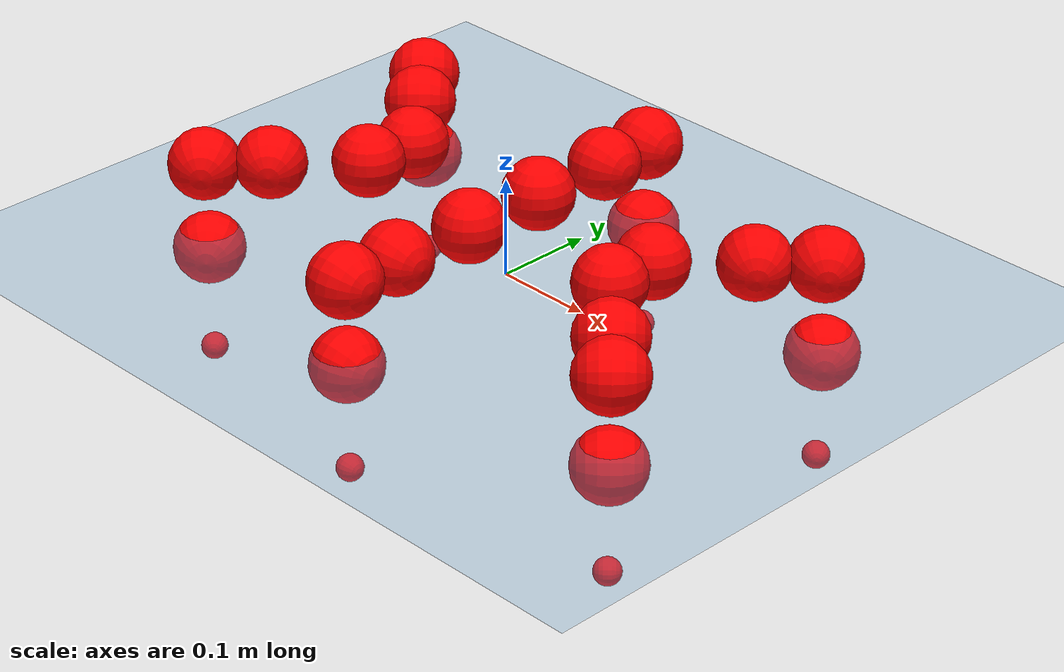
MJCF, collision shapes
<mujoco model="Golem">
  <compiler angle="radian" assetdir="assets" balanceinertia="true" inertiafromgeom="false"/>

  <option timestep="0.005" density="1.2" viscosity="2e-05"/>

  <size nkey="1"/>

  <visual>
    <quality shadowsize="8192"/>
    <map shadowclip="0.5"/>
  </visual>

  <default>
    <default class="/">
      <joint armature="0.01" damping="0.01" frictionloss="0.01"/>
      <geom contype="0" conaffinity="0" group="1" solref="-1000 -80"/>
      <site size="0.01 0.005 0.005" group="5"/>
      <general forcelimited="true" biastype="affine" gainprm="25" biasprm="0 -25 -0.5"/>
      <default class="visual">
        <geom type="mesh" group="2"/>
      </default>
      <default class="collision">
        <geom group="3"/>
      </default>
      <default class="foot">
        <geom size="0.01 0 0" condim="6" group="4" priority="1" solimp="0.015 1 0.01"/>
      </default>
      <default class="reward_collision_sphere">
        <geom group="5" rgba="1 0 0 1"/>
      </default>
    </default>
  </default>

  <asset>
    <texture type="skybox" colorspace="auto" name="//unnamed_texture_0" builtin="gradient" rgb1="0.95 0.95 0.95" rgb2="0.95 0.95 0.95" width="100" height="600"/>
    <texture type="2d" colorspace="auto" name="texplane" builtin="checker" rgb1="0.345 0.575 0.748" rgb2="0.345 0.575 0.748" markrgb="1 1 1" width="512" height="512"/>
    <material name="MatPlane" class="/" texture="texplane" texuniform="true" texrepeat="2 2" specular="0.9"/>
    <mesh name="body" class="/" file="body.stl" scale="0.001 0.001 0.001"/>
    <mesh name="coxa" class="/" file="coxa.stl" scale="0.001 0.001 0.001"/>
    <mesh name="femur" class="/" file="femur.stl" scale="0.001 0.001 0.001"/>
    <mesh name="tibia" class="/" file="tibia.stl" scale="0.001 0.001 0.001"/>
    <mesh name="tarsus" class="/" file="tarsus.stl" scale="0.001 0.001 0.001"/>
  </asset>

  <worldbody>
    <geom name="floor" class="/" size="100 100 0.125" type="plane" group="0" material="MatPlane"/>
    <light name="toplight_shadow" class="/" pos="0 0 5" dir="0.0990148 0.0990148 -0.990148" type="directional" ambient="0.04 0.04 0.04" diffuse="0.55 0.55 0.55" specular="0.12 0.12 0.12"/>
    <light name="toplight_fill" class="/" pos="0 0 5" dir="0.0990148 0.0990148 -0.990148" type="directional" castshadow="false" ambient="0.04 0.04 0.04" diffuse="0.3 0.3 0.3" specular="0.08 0.08 0.08"/>
    <body name="trunk" pos="2.77443e-05 -0.00034112 0.000883031" quat="1 9.08787e-05 2.16678e-05 -0.00028012">
      <inertial pos="-1.12918e-05 -0.000147579 -0.00336135" quat="1 -6.12924e-05 0.000725914 8.67989e-05" mass="2.66022" diaginertia="0.0118226 0.000669269 0.0137576"/>
      <joint name="//unnamed_joint_0" type="free"/>
      <geom name="//unnamed_geom_1" class="/" pos="0 0 0.0682144" quat="1 0 0 0" type="mesh" rgba="0.9 0.9 0.9 1" mesh="body"/>
      <site name="imu" class="/" pos="0.132268 -0.00243893 0.109181" size="0.00893261"/>
      <camera name="track" class="/" pos="0 -1.16086 0" quat="0.707107 0.707107 0 0" mode="trackcom"/>
      <camera name="ego_camera" class="/" pos="0.134356 0 0.106585" quat="-0.5 -0.5 0.5 0.5"/>
      <body name="coxa_RR" pos="-0.182441 -0.0495827 0.0696144" quat="0.382762 -8.10873e-05 -0.000299698 -0.923847">
        <inertial pos="-0.000704454 0.000142083 0.00178115" quat="0.999998 -0.00194699 -0.00047535 -0.000415834" mass="0.141252" diaginertia="0.0116856 0.000654428 0.0138288"/>
        <joint name="coxa_joint_RR" class="/" pos="0 0 0" axis="-0.000947033 0.000378731 -0.999999" stiffness="0.00026096" range="-3.14524 3.13388" armature="0.00908721" damping="0.00838189" frictionloss="0.00888653"/>
        <geom name="//unnamed_geom_2" class="/" type="mesh" rgba="0.2 0.2 0.2 1" mesh="coxa"/>
        <geom name="//unnamed_geom_3" class="reward_collision_sphere" size="0.0357305" pos="-0.0310051 0 0"/>
        <body name="femur_RR" pos="0.0622905 0.00207488 -0.00148218" quat="0.499934 -0.500225 0.499944 0.499897">
          <inertial pos="0.000116147 0.000181224 -0.000756846" quat="0.99999 -9.24246e-05 0.00430067 -0.000990279" mass="0.142485" diaginertia="0.0117037 0.000665454 0.0138051"/>
          <joint name="femur_joint_RR" class="/" pos="0 0 0" axis="0.000249464 -0.00122638 -0.999999" stiffness="0.000224663" range="-3.13585 3.13548" armature="0.00870054" damping="0.000100461" frictionloss="0.00896397"/>
          <geom name="//unnamed_geom_4" class="/" type="mesh" rgba="0.9 0.9 0.9 1" mesh="femur"/>
          <geom name="//unnamed_geom_5" class="reward_collision_sphere" size="0.0357305"/>
          <body name="tibia_RR" pos="0.000941471 -0.0634389 0.00190717" quat="-7.82081e-06 1 2.41014e-06 -4.30231e-05">
            <inertial pos="-0.000164605 0.000303563 0.000283074" quat="1 -1.19356e-05 6.5973e-05 0.000201372" mass="0.144075" diaginertia="0.0119456 0.000663914 0.0139411"/>
            <joint name="tibia_joint_RR" class="/" pos="0 0 0" axis="-0.000605708 0.000423573 1" range="-3.13736 3.14672" armature="0.00932684" damping="0" frictionloss="0.00926655"/>
            <geom name="//unnamed_geom_6" class="/" type="mesh" rgba="0.2 0.2 0.2 1" mesh="tibia"/>
            <geom name="//unnamed_geom_7" class="reward_collision_sphere" size="0.0357305"/>
            <body name="tarsus_RR" pos="0.090433 -0.000972418 -0.00136096" quat="1 -3.17593e-05 1.22749e-05 0.0003192">
              <inertial pos="0.0609036 0.00027098 -0.000956041" quat="0.499461 0.501694 0.501256 0.497579" mass="0.142859" diaginertia="0.0118792 0.000657763 0.0139198"/>
              <joint name="tarsus_joint_RR" class="/" pos="0 0 0" axis="0.00214029 0.00207832 0.999996" range="-3.12287 3.1428" armature="0.00882309" damping="0.00411294" frictionloss="0.00896707"/>
              <geom name="//unnamed_geom_8" class="/" type="mesh" rgba="0.9 0.9 0.9 1" mesh="tarsus"/>
              <geom name="foot_1" class="foot" size="0.0089418" pos="0.115753 0 0" quat="0 -0.707107 0 0.707107"/>
              <geom name="//unnamed_geom_10" class="reward_collision_sphere" size="0.0357305"/>
              <geom name="//unnamed_geom_11" class="reward_collision_sphere" size="0.0133989" pos="0.111102 0 0"/>
              <site name="foot_1" class="foot" pos="0.115753 0 0" quat="0 -0.707107 0 0.707107" size="0.00893261"/>
            </body>
          </body>
        </body>
      </body>
      <body name="coxa_RM" pos="-0.000274276 -0.0775916 0.0689682" quat="0.707099 0.000272874 -0.000147854 -0.707114">
        <inertial pos="0.00011931 0.000199835 0.000737969" quat="0.999997 -0.000920531 -0.0018676 0.00139813" mass="0.144732" diaginertia="0.0118298 0.000664584 0.0137272"/>
        <joint name="coxa_joint_RM" class="/" pos="0 0 0" axis="0.00150942 -0.000915038 -0.999998" range="-3.13796 3.15327" armature="0.00875992" damping="0.00891791" frictionloss="0.00853983"/>
        <geom name="//unnamed_geom_12" class="/" type="mesh" rgba="0.2 0.2 0.2 1" mesh="coxa"/>
        <geom name="//unnamed_geom_13" class="reward_collision_sphere" size="0.0357305" pos="-0.0310051 0 0"/>
        <body name="femur_RM" pos="0.0592329 -0.000680707 0.0011258" quat="0.499967 -0.499988 0.500055 0.499991">
          <inertial pos="0.000199094 -0.00109221 0.000185299" quat="0.999999 -0.00163644 -6.59053e-06 6.37983e-05" mass="0.14091" diaginertia="0.0118287 0.000657369 0.0138408"/>
          <joint name="femur_joint_RM" class="/" pos="0 0 0" axis="0.000816244 -0.000791703 -0.999999" range="-3.15087 3.12564" armature="0.00854411" damping="0.00535039" frictionloss="0.00883816"/>
          <geom name="//unnamed_geom_14" class="/" type="mesh" rgba="0.9 0.9 0.9 1" mesh="femur"/>
          <geom name="//unnamed_geom_15" class="reward_collision_sphere" size="0.0357305"/>
          <body name="tibia_RM" pos="-0.000639976 -0.0611636 -0.000660127" quat="1.66249e-05 1 -4.17566e-05 -8.65413e-05">
            <inertial pos="-0.000270168 -0.000626751 -0.000632715" quat="0.999997 0.00192193 -0.00119636 -0.000491802" mass="0.142595" diaginertia="0.0117954 0.000658972 0.0138713"/>
            <joint name="tibia_joint_RM" class="/" pos="0 0 0" axis="-3.72684e-05 -6.62839e-05 1" range="-3.14547 3.12128" armature="0.00886187" damping="0.00434262" frictionloss="0.00894897"/>
            <geom name="//unnamed_geom_16" class="/" type="mesh" rgba="0.2 0.2 0.2 1" mesh="tibia"/>
            <geom name="//unnamed_geom_17" class="reward_collision_sphere" size="0.0357305"/>
            <body name="tarsus_RM" pos="0.0885511 -0.000374539 0.00123307" quat="1 9.4028e-05 -0.000345541 -0.000240163">
              <inertial pos="0.0623519 0.000536166 0.000423744" quat="0.50027 0.499548 0.499627 0.500554" mass="0.14126" diaginertia="0.0118342 0.000659002 0.013766"/>
              <joint name="tarsus_joint_RM" class="/" pos="0 0 0" axis="2.59527e-05 -1.41921e-05 1" range="-3.14106 3.12872" armature="0.00916468" damping="0.00263345" frictionloss="0.0091483"/>
              <geom name="//unnamed_geom_18" class="/" type="mesh" rgba="0.9 0.9 0.9 1" mesh="tarsus"/>
              <geom name="foot_2" class="foot" size="0.00932518" pos="0.115753 0 0" quat="0 -0.707107 0 0.707107"/>
              <geom name="//unnamed_geom_20" class="reward_collision_sphere" size="0.0357305"/>
              <geom name="//unnamed_geom_21" class="reward_collision_sphere" size="0.0133989" pos="0.111102 0 0"/>
              <site name="foot_2" class="foot" pos="0.115753 0 0" quat="0 -0.707107 0 0.707107" size="0.00893261"/>
            </body>
          </body>
        </body>
      </body>
      <body name="coxa_RF" pos="0.183561 -0.0491609 0.0676693" quat="0.923856 -0.000109903 2.83382e-05 -0.38274">
        <inertial pos="3.11564e-05 -0.000658504 0.000796427" quat="0.99999 0.0021743 0.00351817 -0.00152142" mass="0.143339" diaginertia="0.0119305 0.000666368 0.0138602"/>
        <joint name="coxa_joint_RF" class="/" pos="0 0 0" axis="0.000792399 0.000606663 -1" range="-3.14393 3.15598" armature="0.00877312" damping="0.00681191" frictionloss="0.00886445"/>
        <geom name="//unnamed_geom_22" class="/" type="mesh" rgba="0.2 0.2 0.2 1" mesh="coxa"/>
        <geom name="//unnamed_geom_23" class="reward_collision_sphere" size="0.0357305" pos="-0.0310051 0 0"/>
        <body name="femur_RF" pos="0.0613714 0.000328426 -0.0013475" quat="0.499901 -0.499868 0.500193 0.500039">
          <inertial pos="0.000257772 -1.92832e-05 -0.000383615" quat="0.999992 -0.00170374 -0.00349322 -0.000466378" mass="0.142737" diaginertia="0.0119478 0.000665976 0.0139062"/>
          <joint name="femur_joint_RF" class="/" pos="0 0 0" axis="0.000339338 -0.000479881 -1" range="-3.14935 3.13588" armature="0.00884914" damping="0.00415675" frictionloss="0.00893719"/>
          <geom name="//unnamed_geom_24" class="/" type="mesh" rgba="0.9 0.9 0.9 1" mesh="femur"/>
          <geom name="//unnamed_geom_25" class="reward_collision_sphere" size="0.0357305"/>
          <body name="tibia_RF" pos="0.000575464 -0.0640409 -0.000580095" quat="-0.00018444 1 0.000128487 2.05795e-05">
            <inertial pos="0.000302732 0.000289412 0.000521474" quat="0.999999 -0.000242028 0.00100439 0.000148475" mass="0.140546" diaginertia="0.0116945 0.000649109 0.0136987"/>
            <joint name="tibia_joint_RF" class="/" pos="0 0 0" axis="-0.00177394 0.000611832 0.999998" range="-3.126 3.13444" armature="0.00883265" damping="0" frictionloss="0.00931875"/>
            <geom name="//unnamed_geom_26" class="/" type="mesh" rgba="0.2 0.2 0.2 1" mesh="tibia"/>
            <geom name="//unnamed_geom_27" class="reward_collision_sphere" size="0.0357305"/>
            <body name="tarsus_RF" pos="0.0905633 0.000598062 0.000167344" quat="1 -3.91133e-05 -1.23373e-06 3.94623e-05">
              <inertial pos="0.0620187 0.000563115 0.000121768" quat="0.500148 0.50001 0.499942 0.499899" mass="0.143047" diaginertia="0.0119564 0.000667616 0.0138988"/>
              <joint name="tarsus_joint_RF" class="/" pos="0 0 0" axis="-0.00559586 0.000513417 0.999984" range="-3.14307 3.12757" armature="0.00875146" damping="0" frictionloss="0.00856539"/>
              <geom name="//unnamed_geom_28" class="/" type="mesh" rgba="0.9 0.9 0.9 1" mesh="tarsus"/>
              <geom name="foot_3" class="foot" size="0.00885929" pos="0.115753 0 0" quat="0 -0.707107 0 0.707107"/>
              <geom name="//unnamed_geom_30" class="reward_collision_sphere" size="0.0357305"/>
              <geom name="//unnamed_geom_31" class="reward_collision_sphere" size="0.0133989" pos="0.111102 0 0"/>
              <site name="foot_3" class="foot" pos="0.115753 0 0" quat="0 -0.707107 0 0.707107" size="0.00893261"/>
            </body>
          </body>
        </body>
      </body>
      <body name="coxa_LR" pos="-0.18325 0.0520348 0.0684951" quat="0.38265 -3.05032e-05 -0.000109234 0.923893">
        <inertial pos="0.000938514 -0.000790317 0.000997945" quat="0.999997 -0.000373594 0.00100803 0.00211225" mass="0.143858" diaginertia="0.0118269 0.000669609 0.0138228"/>
        <joint name="coxa_joint_LR" class="/" pos="0 0 0" axis="0.000171293 0.000450945 -1" range="-3.1285 3.13614" armature="0.00897044" damping="0.00494924" frictionloss="0.00856851"/>
        <geom name="//unnamed_geom_32" class="/" type="mesh" rgba="0.2 0.2 0.2 1" mesh="coxa"/>
        <geom name="//unnamed_geom_33" class="reward_collision_sphere" size="0.0357305" pos="-0.0310051 0 0"/>
        <body name="femur_LR" pos="0.0626432 -0.00350873 -0.00149541" quat="0.499909 -0.500054 0.499937 0.500101">
          <inertial pos="-0.000221748 -0.00106051 -0.000146274" quat="1 0.00026993 0.000834581 0.000361465" mass="0.142669" diaginertia="0.0116133 0.000653134 0.0138254"/>
          <joint name="femur_joint_LR" class="/" pos="0 0 0" axis="0.00571224 -9.72317e-05 0.999984" range="-3.12705 3.13512" armature="0.00922852" damping="0.00494718" frictionloss="0.00899076"/>
          <geom name="//unnamed_geom_34" class="/" type="mesh" rgba="0.9 0.9 0.9 1" mesh="femur"/>
          <geom name="//unnamed_geom_35" class="reward_collision_sphere" size="0.0357305"/>
          <body name="tibia_LR" pos="0.000423099 -0.0637142 -0.00149331" quat="2.71916e-05 1 -4.0916e-05 -1.88118e-05">
            <inertial pos="0.000569313 0.000413518 -0.000504315" quat="0.999991 0.00357333 0.00216718 0.00079655" mass="0.143075" diaginertia="0.0119317 0.000658359 0.0138954"/>
            <joint name="tibia_joint_LR" class="/" pos="0 0 0" axis="0.00102818 -0.00308441 -0.999995" stiffness="7.70738e-05" range="-3.13536 3.12306" armature="0.00922382" damping="0.00448238" frictionloss="0.00893494"/>
            <geom name="//unnamed_geom_36" class="/" type="mesh" rgba="0.2 0.2 0.2 1" mesh="tibia"/>
            <geom name="//unnamed_geom_37" class="reward_collision_sphere" size="0.0357305"/>
            <body name="tarsus_LR" pos="0.0913723 0.000507003 0.00153537" quat="1 1.36394e-05 -1.90217e-05 1.89432e-05">
              <inertial pos="0.0624991 0.000832197 0.000547287" quat="0.499844 0.499977 0.500041 0.500139" mass="0.142502" diaginertia="0.0117749 0.000664057 0.01361"/>
              <joint name="tarsus_joint_LR" class="/" pos="0 0 0" axis="-0.000114018 8.37074e-05 -1" range="-3.14694 3.1204" armature="0.00889252" damping="0" frictionloss="0.00931726"/>
              <geom name="//unnamed_geom_38" class="/" type="mesh" rgba="0.9 0.9 0.9 1" mesh="tarsus"/>
              <geom name="foot_4" class="foot" size="0.00851916" pos="0.115753 0 0" quat="0.707107 0 -0.707107 0"/>
              <geom name="//unnamed_geom_40" class="reward_collision_sphere" size="0.0357305"/>
              <geom name="//unnamed_geom_41" class="reward_collision_sphere" size="0.0133989" pos="0.111102 0 0"/>
              <site name="foot_4" class="foot" pos="0.115753 0 0" quat="0.707107 0 -0.707107 0" size="0.00893261"/>
            </body>
          </body>
        </body>
      </body>
      <body name="coxa_LM" pos="-0.00203724 0.0752187 0.0683747" quat="0.707084 1.4404e-05 -3.22123e-05 0.70713">
        <inertial pos="4.01687e-05 0.000140612 0.00069049" quat="0.999998 -8.44422e-05 0.00113745 -0.00180741" mass="0.143663" diaginertia="0.0117625 0.000660371 0.0138364"/>
        <joint name="coxa_joint_LM" class="/" pos="0 0 0" axis="0.00263479 -0.00500523 -0.999984" range="-3.14704 3.14123" armature="0.0089699" damping="0.00725866" frictionloss="0.00891757"/>
        <geom name="//unnamed_geom_42" class="/" type="mesh" rgba="0.2 0.2 0.2 1" mesh="coxa"/>
        <geom name="//unnamed_geom_43" class="reward_collision_sphere" size="0.0357305" pos="-0.0310051 0 0"/>
        <body name="femur_LM" pos="0.0582317 0.000780795 -0.00122793" quat="0.500171 -0.500105 0.499988 0.499736">
          <inertial pos="0.000683381 9.50301e-05 -0.000619511" quat="0.999993 -0.000335907 -0.00162021 -0.00341388" mass="0.144224" diaginertia="0.0118649 0.000664025 0.0138359"/>
          <joint name="femur_joint_LM" class="/" pos="0 0 0" axis="-0.000805167 -0.00689552 0.999976" range="-3.13049 3.12999" armature="0.00929796" damping="0.00439164" frictionloss="0.00914683"/>
          <geom name="//unnamed_geom_44" class="/" type="mesh" rgba="0.9 0.9 0.9 1" mesh="femur"/>
          <geom name="//unnamed_geom_45" class="reward_collision_sphere" size="0.0357305"/>
          <body name="tibia_LM" pos="-0.000246358 -0.0594752 0.00152611" quat="-0.000224797 1 2.68248e-05 0.000304454">
            <inertial pos="-0.000620296 -0.00145347 -8.30139e-05" quat="0.999998 0.00129419 -0.000976581 0.000863659" mass="0.139766" diaginertia="0.0116901 0.000653336 0.0136498"/>
            <joint name="tibia_joint_LM" class="/" pos="0 0 0" axis="0.00113953 0.000878581 -0.999999" range="-3.15084 3.154" armature="0.00933959" damping="0" frictionloss="0.00866814"/>
            <geom name="//unnamed_geom_46" class="/" type="mesh" rgba="0.2 0.2 0.2 1" mesh="tibia"/>
            <geom name="//unnamed_geom_47" class="reward_collision_sphere" size="0.0357305"/>
            <body name="tarsus_LM" pos="0.0909086 -0.000467344 -0.00102597" quat="1 5.7672e-05 -9.00491e-05 0.000100014">
              <inertial pos="0.0634133 0.000104783 2.24175e-05" quat="0.497101 0.499924 0.501735 0.501227" mass="0.140982" diaginertia="0.0116238 0.000645794 0.0136364"/>
              <joint name="tarsus_joint_LM" class="/" pos="0 0 0" axis="-0.00082104 0.000615177 -0.999999" range="-3.13898 3.13689" armature="0.00876977" damping="0.00184314" frictionloss="0.00912634"/>
              <geom name="//unnamed_geom_48" class="/" type="mesh" rgba="0.9 0.9 0.9 1" mesh="tarsus"/>
              <geom name="foot_5" class="foot" size="0.00871703" pos="0.115753 0 0" quat="0.707107 0 -0.707107 0"/>
              <geom name="//unnamed_geom_50" class="reward_collision_sphere" size="0.0357305"/>
              <geom name="//unnamed_geom_51" class="reward_collision_sphere" size="0.0133989" pos="0.111102 0 0"/>
              <site name="foot_5" class="foot" pos="0.115753 0 0" quat="0.707107 0 -0.707107 0" size="0.00893261"/>
            </body>
          </body>
        </body>
      </body>
      <body name="coxa_LF" pos="0.184244 0.0488915 0.0685595" quat="0.923923 9.09047e-05 0.000368895 0.382578">
        <inertial pos="0.000112778 -0.00054906 0.000834849" quat="0.999999 0.000351535 0.000339821 0.00128179" mass="0.143401" diaginertia="0.0118798 0.000659013 0.0137426"/>
        <joint name="coxa_joint_LF" class="/" pos="0 0 0" axis="-0.00245261 -0.0018972 -0.999995" range="-3.1222 3.14063" armature="0.00880306" damping="0.00263104" frictionloss="0.0092625"/>
        <geom name="//unnamed_geom_52" class="/" type="mesh" rgba="0.2 0.2 0.2 1" mesh="coxa"/>
        <geom name="//unnamed_geom_53" class="reward_collision_sphere" size="0.0357305" pos="-0.0310051 0 0"/>
        <body name="femur_LF" pos="0.0618079 0.000254527 -0.000608304" quat="0.500084 -0.500186 0.499827 0.499903">
          <inertial pos="3.65543e-05 0.000836868 0.000286691" quat="1 0.000169833 -0.000379639 9.30265e-05" mass="0.143445" diaginertia="0.0117979 0.000661732 0.0138144"/>
          <joint name="femur_joint_LF" class="/" pos="0 0 0" axis="0.000313103 0.00107943 0.999999" range="-3.12712 3.1256" armature="0.00913278" damping="0.000716437" frictionloss="0.00887254"/>
          <geom name="//unnamed_geom_54" class="/" type="mesh" rgba="0.9 0.9 0.9 1" mesh="femur"/>
          <geom name="//unnamed_geom_55" class="reward_collision_sphere" size="0.0357305"/>
          <body name="tibia_LF" pos="0.00055669 -0.0632283 -0.000543169" quat="-0.000183265 1 0.000465758 -0.000188706">
            <inertial pos="-0.000883629 -2.12392e-05 0.000700991" quat="0.999999 0.000978652 0.000834207 -0.000757776" mass="0.140174" diaginertia="0.0118501 0.00065587 0.0138246"/>
            <joint name="tibia_joint_LF" class="/" pos="0 0 0" axis="-0.000701992 0.00631534 -0.99998" range="-3.14539 3.15192" armature="0.00906236" damping="0" frictionloss="0.00909329"/>
            <geom name="//unnamed_geom_56" class="/" type="mesh" rgba="0.2 0.2 0.2 1" mesh="tibia"/>
            <geom name="//unnamed_geom_57" class="reward_collision_sphere" size="0.0357305"/>
            <body name="tarsus_LF" pos="0.0926549 0.00148633 0.000481252" quat="1 5.5032e-06 4.65216e-05 5.78723e-05">
              <inertial pos="0.0630089 0.000634544 -0.000241241" quat="0.498712 0.502969 0.497675 0.500628" mass="0.143162" diaginertia="0.0117503 0.000658863 0.0137746"/>
              <joint name="tarsus_joint_LF" class="/" pos="0 0 0" axis="0.000777283 -0.0032802 -0.999994" stiffness="0.0268742" range="-3.14828 3.15297" armature="0.0089818" damping="0.0245303" frictionloss="0.00918139"/>
              <geom name="//unnamed_geom_58" class="/" type="mesh" rgba="0.9 0.9 0.9 1" mesh="tarsus"/>
              <geom name="foot_6" class="foot" size="0.00914183" pos="0.115753 0 0" quat="0.707107 0 -0.707107 0"/>
              <geom name="//unnamed_geom_60" class="reward_collision_sphere" size="0.0357305"/>
              <geom name="//unnamed_geom_61" class="reward_collision_sphere" size="0.0133989" pos="0.111102 0 0"/>
              <site name="foot_6" class="foot" pos="0.115753 0 0" quat="0.707107 0 -0.707107 0" size="0.00893261"/>
            </body>
          </body>
        </body>
      </body>
    </body>
  </worldbody>

  <contact>
    <pair class="/" geom1="floor" geom2="foot_1" name="//unnamed_contact_0"/>
    <pair class="/" geom1="floor" geom2="foot_2" name="//unnamed_contact_1"/>
    <pair class="/" geom1="floor" geom2="foot_3" name="//unnamed_contact_2"/>
    <pair class="/" geom1="floor" geom2="foot_4" name="//unnamed_contact_3"/>
    <pair class="/" geom1="floor" geom2="foot_5" name="//unnamed_contact_4"/>
    <pair class="/" geom1="floor" geom2="foot_6" name="//unnamed_contact_5"/>
  </contact>

  <actuator>
    <general name="coxa_joint_RR" class="/" joint="coxa_joint_RR" forcerange="-6.51344 6.51344" gainprm="21.675" biasprm="0 -21.675 -0.469888"/>
    <general name="femur_joint_RR" class="/" joint="femur_joint_RR" forcerange="-6.61516 6.61516" gainprm="21.675" biasprm="0 -21.675 -0.469888"/>
    <general name="tibia_joint_RR" class="/" joint="tibia_joint_RR" forcerange="-6.55279 6.55279" gainprm="21.675" biasprm="0 -21.675 -0.469888"/>
    <general name="tarsus_joint_RR" class="/" joint="tarsus_joint_RR" forcerange="-6.3775 6.3775" gainprm="21.675" biasprm="0 -21.675 -0.469888"/>
    <general name="coxa_joint_RM" class="/" joint="coxa_joint_RM" forcerange="-6.57475 6.57475" gainprm="21.675" biasprm="0 -21.675 -0.469888"/>
    <general name="femur_joint_RM" class="/" joint="femur_joint_RM" forcerange="-6.3852 6.3852" gainprm="21.675" biasprm="0 -21.675 -0.469888"/>
    <general name="tibia_joint_RM" class="/" joint="tibia_joint_RM" forcerange="-6.59173 6.59173" gainprm="21.675" biasprm="0 -21.675 -0.469888"/>
    <general name="tarsus_joint_RM" class="/" joint="tarsus_joint_RM" forcerange="-6.42886 6.42886" gainprm="21.675" biasprm="0 -21.675 -0.469888"/>
    <general name="coxa_joint_RF" class="/" joint="coxa_joint_RF" forcerange="-6.66885 6.66885" gainprm="21.675" biasprm="0 -21.675 -0.469888"/>
    <general name="femur_joint_RF" class="/" joint="femur_joint_RF" forcerange="-6.56496 6.56496" gainprm="21.675" biasprm="0 -21.675 -0.469888"/>
    <general name="tibia_joint_RF" class="/" joint="tibia_joint_RF" forcerange="-6.51906 6.51906" gainprm="21.675" biasprm="0 -21.675 -0.469888"/>
    <general name="tarsus_joint_RF" class="/" joint="tarsus_joint_RF" forcerange="-6.60164 6.60164" gainprm="21.675" biasprm="0 -21.675 -0.469888"/>
    <general name="coxa_joint_LR" class="/" joint="coxa_joint_LR" forcerange="-6.53628 6.53628" gainprm="21.675" biasprm="0 -21.675 -0.469888"/>
    <general name="femur_joint_LR" class="/" joint="femur_joint_LR" forcerange="-6.5436 6.5436" gainprm="21.675" biasprm="0 -21.675 -0.469888"/>
    <general name="tibia_joint_LR" class="/" joint="tibia_joint_LR" forcerange="-6.56566 6.56566" gainprm="21.675" biasprm="0 -21.675 -0.469888"/>
    <general name="tarsus_joint_LR" class="/" joint="tarsus_joint_LR" forcerange="-6.46985 6.46985" gainprm="21.675" biasprm="0 -21.675 -0.469888"/>
    <general name="coxa_joint_LM" class="/" joint="coxa_joint_LM" forcerange="-6.40361 6.40361" gainprm="21.675" biasprm="0 -21.675 -0.469888"/>
    <general name="femur_joint_LM" class="/" joint="femur_joint_LM" forcerange="-6.41411 6.41411" gainprm="21.675" biasprm="0 -21.675 -0.469888"/>
    <general name="tibia_joint_LM" class="/" joint="tibia_joint_LM" forcerange="-6.53238 6.53238" gainprm="21.675" biasprm="0 -21.675 -0.469888"/>
    <general name="tarsus_joint_LM" class="/" joint="tarsus_joint_LM" forcerange="-6.45295 6.45295" gainprm="21.675" biasprm="0 -21.675 -0.469888"/>
    <general name="coxa_joint_LF" class="/" joint="coxa_joint_LF" forcerange="-6.70328 6.70328" gainprm="21.675" biasprm="0 -21.675 -0.469888"/>
    <general name="femur_joint_LF" class="/" joint="femur_joint_LF" forcerange="-6.54622 6.54622" gainprm="21.675" biasprm="0 -21.675 -0.469888"/>
    <general name="tibia_joint_LF" class="/" joint="tibia_joint_LF" forcerange="-6.50455 6.50455" gainprm="21.675" biasprm="0 -21.675 -0.469888"/>
    <general name="tarsus_joint_LF" class="/" joint="tarsus_joint_LF" forcerange="-6.50456 6.50456" gainprm="21.675" biasprm="0 -21.675 -0.469888"/>
  </actuator>

  <sensor>
    <gyro site="imu" name="imu_angular_velocity"/>
    <velocimeter site="imu" name="imu_linear_velocity"/>
    <framelinvel objtype="site" objname="foot_1" name="foot_1_global_linear_velocity"/>
    <framelinvel objtype="site" objname="foot_2" name="foot_2_global_linear_velocity"/>
    <framelinvel objtype="site" objname="foot_3" name="foot_3_global_linear_velocity"/>
    <framelinvel objtype="site" objname="foot_4" name="foot_4_global_linear_velocity"/>
    <framelinvel objtype="site" objname="foot_5" name="foot_5_global_linear_velocity"/>
    <framelinvel objtype="site" objname="foot_6" name="foot_6_global_linear_velocity"/>
  </sensor>

  <keyframe>
    <key name="home" qpos="0 0 0.1457 1 0 0 0 0 0 0 0 0 0 0 0 0 0 0 0 0 0 0 0 0 0 0 0 0 0 0 0"/>
  </keyframe>
</mujoco>
